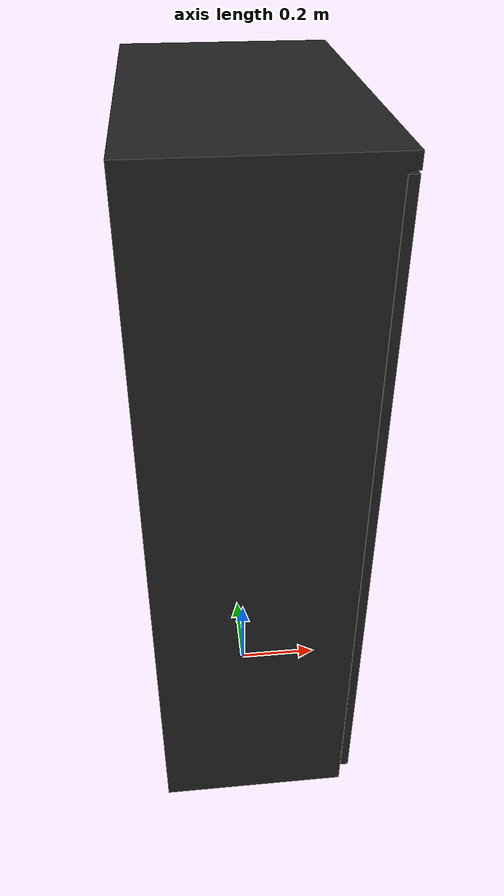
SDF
<?xml version="1.0" ?>
<sdf version="1.5">
  <model name="2d_cabinet">
    <static>true</static>
    <link name="2d_cabinet">
      <collision name="2d_cabinet">
        <pose>0 0 0 0 0 0</pose>
        <geometry>
          <mesh>
            <uri>model://2d_cabinet/meshes/model.dae</uri>
          </mesh>
        </geometry>
      </collision>

      <visual name="2d_cabinet">
      <cast_shadows>true</cast_shadows>
        <geometry>
          <mesh>
          <uri>model://2d_cabinet/meshes/model.dae</uri>
        </mesh>
        </geometry>
      </visual>
    </link>
  </model>
</sdf>
